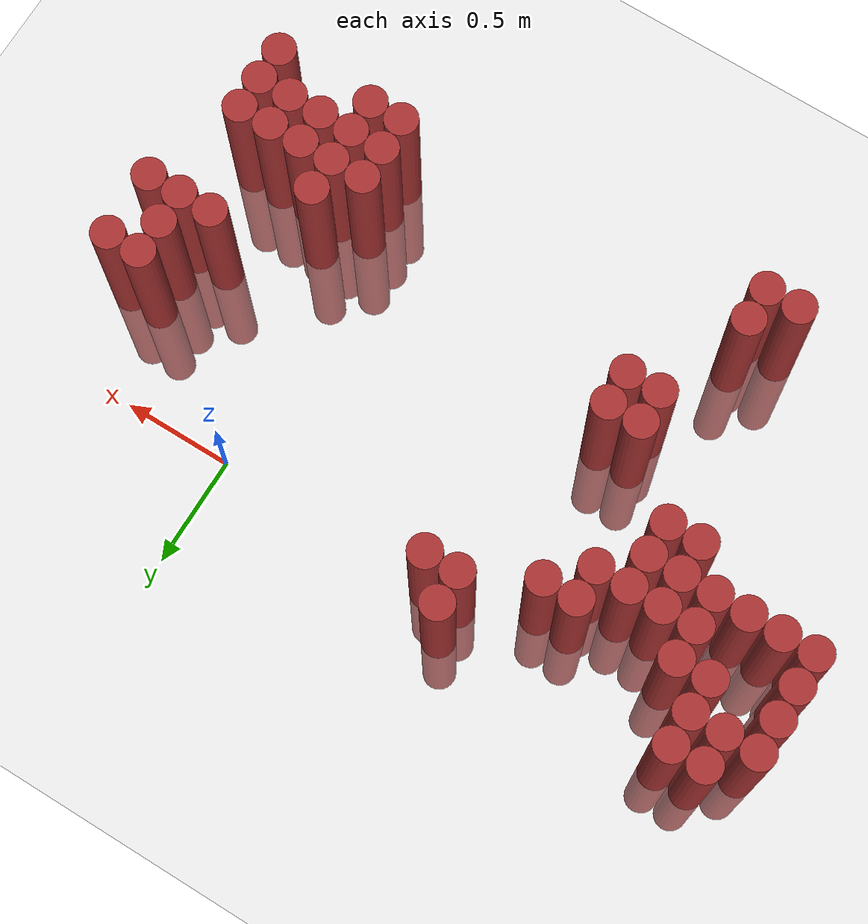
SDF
<sdf version="1.6">
 <world name="default">
  <model name="ground_plane">
   <static>1</static>
   <link name="link">
    <collision name="collision">
     <geometry><plane><normal>0 0 1</normal><size>100 100</size></plane></geometry>
     <surface><friction><ode><mu>100</mu><mu2>50</mu2></ode></friction></surface>
    </collision>
    <visual name="visual">
     <cast_shadows>0</cast_shadows>
     <geometry><plane><normal>0 0 1</normal><size>100 100</size></plane></geometry>
     <material>
      <script><uri>file://media/materials/scripts/gazebo.material</uri><name>Gazebo/Grey</name></script>
     </material>
    </visual>
   </link>
  </model>
  <model name="unit_cylinder_300">
   <static>1</static>
   <pose>-2.525000 -0.425000 0.000000 0.000000 0.000000 0.000000</pose>
   <link name="link">
    <inertial>
     <mass>1</mass>
     <inertia><ixx>0.145833</ixx><ixy>0</ixy><ixz>0</ixz><iyy>0.145833</iyy><iyz>0</iyz><izz>0.125</izz></inertia>
    </inertial>
    <collision name="collision">
     <geometry><cylinder><radius>0.075000</radius><length>1.5</length></cylinder></geometry>
    </collision>
    <visual name="visual">
     <geometry><cylinder><radius>0.075000</radius><length>1.5</length></cylinder></geometry>
     <material>
      <ambient>0.648000 0.192000 0.192000 1</ambient>
      <diffuse>0.648000 0.192000 0.192000 1</diffuse>
     </material>
     <material>
      <script><name>Gazebo/Grey</name><uri>file://media/materials/scripts/gazebo.material</uri></script>
     </material>
    </visual>
   </link>
  </model>
  <model name="unit_cylinder_301">
   <static>1</static>
   <pose>-2.525000 -0.275000 0.000000 0.000000 0.000000 0.000000</pose>
   <link name="link">
    <inertial>
     <mass>1</mass>
     <inertia><ixx>0.145833</ixx><ixy>0</ixy><ixz>0</ixz><iyy>0.145833</iyy><iyz>0</iyz><izz>0.125</izz></inertia>
    </inertial>
    <collision name="collision">
     <geometry><cylinder><radius>0.075000</radius><length>1.5</length></cylinder></geometry>
    </collision>
    <visual name="visual">
     <geometry><cylinder><radius>0.075000</radius><length>1.5</length></cylinder></geometry>
     <material>
      <ambient>0.648000 0.192000 0.192000 1</ambient>
      <diffuse>0.648000 0.192000 0.192000 1</diffuse>
     </material>
     <material>
      <script><name>Gazebo/Grey</name><uri>file://media/materials/scripts/gazebo.material</uri></script>
     </material>
    </visual>
   </link>
  </model>
  <model name="unit_cylinder_302">
   <static>1</static>
   <pose>-2.525000 -0.125000 0.000000 0.000000 0.000000 0.000000</pose>
   <link name="link">
    <inertial>
     <mass>1</mass>
     <inertia><ixx>0.145833</ixx><ixy>0</ixy><ixz>0</ixz><iyy>0.145833</iyy><iyz>0</iyz><izz>0.125</izz></inertia>
    </inertial>
    <collision name="collision">
     <geometry><cylinder><radius>0.075000</radius><length>1.5</length></cylinder></geometry>
    </collision>
    <visual name="visual">
     <geometry><cylinder><radius>0.075000</radius><length>1.5</length></cylinder></geometry>
     <material>
      <ambient>0.648000 0.192000 0.192000 1</ambient>
      <diffuse>0.648000 0.192000 0.192000 1</diffuse>
     </material>
     <material>
      <script><name>Gazebo/Grey</name><uri>file://media/materials/scripts/gazebo.material</uri></script>
     </material>
    </visual>
   </link>
  </model>
  <model name="unit_cylinder_303">
   <static>1</static>
   <pose>-2.525000 0.025000 0.000000 0.000000 0.000000 0.000000</pose>
   <link name="link">
    <inertial>
     <mass>1</mass>
     <inertia><ixx>0.145833</ixx><ixy>0</ixy><ixz>0</ixz><iyy>0.145833</iyy><iyz>0</iyz><izz>0.125</izz></inertia>
    </inertial>
    <collision name="collision">
     <geometry><cylinder><radius>0.075000</radius><length>1.5</length></cylinder></geometry>
    </collision>
    <visual name="visual">
     <geometry><cylinder><radius>0.075000</radius><length>1.5</length></cylinder></geometry>
     <material>
      <ambient>0.648000 0.192000 0.192000 1</ambient>
      <diffuse>0.648000 0.192000 0.192000 1</diffuse>
     </material>
     <material>
      <script><name>Gazebo/Grey</name><uri>file://media/materials/scripts/gazebo.material</uri></script>
     </material>
    </visual>
   </link>
  </model>
  <model name="unit_cylinder_309">
   <static>1</static>
   <pose>-2.375000 -0.425000 0.000000 0.000000 0.000000 0.000000</pose>
   <link name="link">
    <inertial>
     <mass>1</mass>
     <inertia><ixx>0.145833</ixx><ixy>0</ixy><ixz>0</ixz><iyy>0.145833</iyy><iyz>0</iyz><izz>0.125</izz></inertia>
    </inertial>
    <collision name="collision">
     <geometry><cylinder><radius>0.075000</radius><length>1.5</length></cylinder></geometry>
    </collision>
    <visual name="visual">
     <geometry><cylinder><radius>0.075000</radius><length>1.5</length></cylinder></geometry>
     <material>
      <ambient>0.648000 0.192000 0.192000 1</ambient>
      <diffuse>0.648000 0.192000 0.192000 1</diffuse>
     </material>
     <material>
      <script><name>Gazebo/Grey</name><uri>file://media/materials/scripts/gazebo.material</uri></script>
     </material>
    </visual>
   </link>
  </model>
  <model name="unit_cylinder_310">
   <static>1</static>
   <pose>-2.375000 0.025000 0.000000 0.000000 0.000000 0.000000</pose>
   <link name="link">
    <inertial>
     <mass>1</mass>
     <inertia><ixx>0.145833</ixx><ixy>0</ixy><ixz>0</ixz><iyy>0.145833</iyy><iyz>0</iyz><izz>0.125</izz></inertia>
    </inertial>
    <collision name="collision">
     <geometry><cylinder><radius>0.075000</radius><length>1.5</length></cylinder></geometry>
    </collision>
    <visual name="visual">
     <geometry><cylinder><radius>0.075000</radius><length>1.5</length></cylinder></geometry>
     <material>
      <ambient>0.648000 0.192000 0.192000 1</ambient>
      <diffuse>0.648000 0.192000 0.192000 1</diffuse>
     </material>
     <material>
      <script><name>Gazebo/Grey</name><uri>file://media/materials/scripts/gazebo.material</uri></script>
     </material>
    </visual>
   </link>
  </model>
  <model name="unit_cylinder_311">
   <static>1</static>
   <pose>-2.375000 0.175000 0.000000 0.000000 0.000000 0.000000</pose>
   <link name="link">
    <inertial>
     <mass>1</mass>
     <inertia><ixx>0.145833</ixx><ixy>0</ixy><ixz>0</ixz><iyy>0.145833</iyy><iyz>0</iyz><izz>0.125</izz></inertia>
    </inertial>
    <collision name="collision">
     <geometry><cylinder><radius>0.075000</radius><length>1.5</length></cylinder></geometry>
    </collision>
    <visual name="visual">
     <geometry><cylinder><radius>0.075000</radius><length>1.5</length></cylinder></geometry>
     <material>
      <ambient>0.648000 0.192000 0.192000 1</ambient>
      <diffuse>0.648000 0.192000 0.192000 1</diffuse>
     </material>
     <material>
      <script><name>Gazebo/Grey</name><uri>file://media/materials/scripts/gazebo.material</uri></script>
     </material>
    </visual>
   </link>
  </model>
  <model name="unit_cylinder_320">
   <static>1</static>
   <pose>-2.225000 -0.425000 0.000000 0.000000 0.000000 0.000000</pose>
   <link name="link">
    <inertial>
     <mass>1</mass>
     <inertia><ixx>0.145833</ixx><ixy>0</ixy><ixz>0</ixz><iyy>0.145833</iyy><iyz>0</iyz><izz>0.125</izz></inertia>
    </inertial>
    <collision name="collision">
     <geometry><cylinder><radius>0.075000</radius><length>1.5</length></cylinder></geometry>
    </collision>
    <visual name="visual">
     <geometry><cylinder><radius>0.075000</radius><length>1.5</length></cylinder></geometry>
     <material>
      <ambient>0.648000 0.192000 0.192000 1</ambient>
      <diffuse>0.648000 0.192000 0.192000 1</diffuse>
     </material>
     <material>
      <script><name>Gazebo/Grey</name><uri>file://media/materials/scripts/gazebo.material</uri></script>
     </material>
    </visual>
   </link>
  </model>
  <model name="unit_cylinder_321">
   <static>1</static>
   <pose>-2.225000 -0.125000 0.000000 0.000000 0.000000 0.000000</pose>
   <link name="link">
    <inertial>
     <mass>1</mass>
     <inertia><ixx>0.145833</ixx><ixy>0</ixy><ixz>0</ixz><iyy>0.145833</iyy><iyz>0</iyz><izz>0.125</izz></inertia>
    </inertial>
    <collision name="collision">
     <geometry><cylinder><radius>0.075000</radius><length>1.5</length></cylinder></geometry>
    </collision>
    <visual name="visual">
     <geometry><cylinder><radius>0.075000</radius><length>1.5</length></cylinder></geometry>
     <material>
      <ambient>0.648000 0.192000 0.192000 1</ambient>
      <diffuse>0.648000 0.192000 0.192000 1</diffuse>
     </material>
     <material>
      <script><name>Gazebo/Grey</name><uri>file://media/materials/scripts/gazebo.material</uri></script>
     </material>
    </visual>
   </link>
  </model>
  <model name="unit_cylinder_322">
   <static>1</static>
   <pose>-2.225000 0.025000 0.000000 0.000000 0.000000 0.000000</pose>
   <link name="link">
    <inertial>
     <mass>1</mass>
     <inertia><ixx>0.145833</ixx><ixy>0</ixy><ixz>0</ixz><iyy>0.145833</iyy><iyz>0</iyz><izz>0.125</izz></inertia>
    </inertial>
    <collision name="collision">
     <geometry><cylinder><radius>0.075000</radius><length>1.5</length></cylinder></geometry>
    </collision>
    <visual name="visual">
     <geometry><cylinder><radius>0.075000</radius><length>1.5</length></cylinder></geometry>
     <material>
      <ambient>0.648000 0.192000 0.192000 1</ambient>
      <diffuse>0.648000 0.192000 0.192000 1</diffuse>
     </material>
     <material>
      <script><name>Gazebo/Grey</name><uri>file://media/materials/scripts/gazebo.material</uri></script>
     </material>
    </visual>
   </link>
  </model>
  <model name="unit_cylinder_323">
   <static>1</static>
   <pose>-2.225000 0.175000 0.000000 0.000000 0.000000 0.000000</pose>
   <link name="link">
    <inertial>
     <mass>1</mass>
     <inertia><ixx>0.145833</ixx><ixy>0</ixy><ixz>0</ixz><iyy>0.145833</iyy><iyz>0</iyz><izz>0.125</izz></inertia>
    </inertial>
    <collision name="collision">
     <geometry><cylinder><radius>0.075000</radius><length>1.5</length></cylinder></geometry>
    </collision>
    <visual name="visual">
     <geometry><cylinder><radius>0.075000</radius><length>1.5</length></cylinder></geometry>
     <material>
      <ambient>0.648000 0.192000 0.192000 1</ambient>
      <diffuse>0.648000 0.192000 0.192000 1</diffuse>
     </material>
     <material>
      <script><name>Gazebo/Grey</name><uri>file://media/materials/scripts/gazebo.material</uri></script>
     </material>
    </visual>
   </link>
  </model>
  <model name="unit_cylinder_333">
   <static>1</static>
   <pose>-2.075000 -0.425000 0.000000 0.000000 0.000000 0.000000</pose>
   <link name="link">
    <inertial>
     <mass>1</mass>
     <inertia><ixx>0.145833</ixx><ixy>0</ixy><ixz>0</ixz><iyy>0.145833</iyy><iyz>0</iyz><izz>0.125</izz></inertia>
    </inertial>
    <collision name="collision">
     <geometry><cylinder><radius>0.075000</radius><length>1.5</length></cylinder></geometry>
    </collision>
    <visual name="visual">
     <geometry><cylinder><radius>0.075000</radius><length>1.5</length></cylinder></geometry>
     <material>
      <ambient>0.648000 0.192000 0.192000 1</ambient>
      <diffuse>0.648000 0.192000 0.192000 1</diffuse>
     </material>
     <material>
      <script><name>Gazebo/Grey</name><uri>file://media/materials/scripts/gazebo.material</uri></script>
     </material>
    </visual>
   </link>
  </model>
  <model name="unit_cylinder_334">
   <static>1</static>
   <pose>-2.075000 -0.275000 0.000000 0.000000 0.000000 0.000000</pose>
   <link name="link">
    <inertial>
     <mass>1</mass>
     <inertia><ixx>0.145833</ixx><ixy>0</ixy><ixz>0</ixz><iyy>0.145833</iyy><iyz>0</iyz><izz>0.125</izz></inertia>
    </inertial>
    <collision name="collision">
     <geometry><cylinder><radius>0.075000</radius><length>1.5</length></cylinder></geometry>
    </collision>
    <visual name="visual">
     <geometry><cylinder><radius>0.075000</radius><length>1.5</length></cylinder></geometry>
     <material>
      <ambient>0.648000 0.192000 0.192000 1</ambient>
      <diffuse>0.648000 0.192000 0.192000 1</diffuse>
     </material>
     <material>
      <script><name>Gazebo/Grey</name><uri>file://media/materials/scripts/gazebo.material</uri></script>
     </material>
    </visual>
   </link>
  </model>
  <model name="unit_cylinder_335">
   <static>1</static>
   <pose>-2.075000 -0.125000 0.000000 0.000000 0.000000 0.000000</pose>
   <link name="link">
    <inertial>
     <mass>1</mass>
     <inertia><ixx>0.145833</ixx><ixy>0</ixy><ixz>0</ixz><iyy>0.145833</iyy><iyz>0</iyz><izz>0.125</izz></inertia>
    </inertial>
    <collision name="collision">
     <geometry><cylinder><radius>0.075000</radius><length>1.5</length></cylinder></geometry>
    </collision>
    <visual name="visual">
     <geometry><cylinder><radius>0.075000</radius><length>1.5</length></cylinder></geometry>
     <material>
      <ambient>0.648000 0.192000 0.192000 1</ambient>
      <diffuse>0.648000 0.192000 0.192000 1</diffuse>
     </material>
     <material>
      <script><name>Gazebo/Grey</name><uri>file://media/materials/scripts/gazebo.material</uri></script>
     </material>
    </visual>
   </link>
  </model>
  <model name="unit_cylinder_345">
   <static>1</static>
   <pose>-1.925000 -0.575000 0.000000 0.000000 0.000000 0.000000</pose>
   <link name="link">
    <inertial>
     <mass>1</mass>
     <inertia><ixx>0.145833</ixx><ixy>0</ixy><ixz>0</ixz><iyy>0.145833</iyy><iyz>0</iyz><izz>0.125</izz></inertia>
    </inertial>
    <collision name="collision">
     <geometry><cylinder><radius>0.075000</radius><length>1.5</length></cylinder></geometry>
    </collision>
    <visual name="visual">
     <geometry><cylinder><radius>0.075000</radius><length>1.5</length></cylinder></geometry>
     <material>
      <ambient>0.648000 0.192000 0.192000 1</ambient>
      <diffuse>0.648000 0.192000 0.192000 1</diffuse>
     </material>
     <material>
      <script><name>Gazebo/Grey</name><uri>file://media/materials/scripts/gazebo.material</uri></script>
     </material>
    </visual>
   </link>
  </model>
  <model name="unit_cylinder_346">
   <static>1</static>
   <pose>-1.925000 -0.425000 0.000000 0.000000 0.000000 0.000000</pose>
   <link name="link">
    <inertial>
     <mass>1</mass>
     <inertia><ixx>0.145833</ixx><ixy>0</ixy><ixz>0</ixz><iyy>0.145833</iyy><iyz>0</iyz><izz>0.125</izz></inertia>
    </inertial>
    <collision name="collision">
     <geometry><cylinder><radius>0.075000</radius><length>1.5</length></cylinder></geometry>
    </collision>
    <visual name="visual">
     <geometry><cylinder><radius>0.075000</radius><length>1.5</length></cylinder></geometry>
     <material>
      <ambient>0.648000 0.192000 0.192000 1</ambient>
      <diffuse>0.648000 0.192000 0.192000 1</diffuse>
     </material>
     <material>
      <script><name>Gazebo/Grey</name><uri>file://media/materials/scripts/gazebo.material</uri></script>
     </material>
    </visual>
   </link>
  </model>
  <model name="unit_cylinder_347">
   <static>1</static>
   <pose>-1.925000 -0.275000 0.000000 0.000000 0.000000 0.000000</pose>
   <link name="link">
    <inertial>
     <mass>1</mass>
     <inertia><ixx>0.145833</ixx><ixy>0</ixy><ixz>0</ixz><iyy>0.145833</iyy><iyz>0</iyz><izz>0.125</izz></inertia>
    </inertial>
    <collision name="collision">
     <geometry><cylinder><radius>0.075000</radius><length>1.5</length></cylinder></geometry>
    </collision>
    <visual name="visual">
     <geometry><cylinder><radius>0.075000</radius><length>1.5</length></cylinder></geometry>
     <material>
      <ambient>0.648000 0.192000 0.192000 1</ambient>
      <diffuse>0.648000 0.192000 0.192000 1</diffuse>
     </material>
     <material>
      <script><name>Gazebo/Grey</name><uri>file://media/materials/scripts/gazebo.material</uri></script>
     </material>
    </visual>
   </link>
  </model>
  <model name="unit_cylinder_357">
   <static>1</static>
   <pose>-1.775000 -1.625000 0.000000 0.000000 0.000000 0.000000</pose>
   <link name="link">
    <inertial>
     <mass>1</mass>
     <inertia><ixx>0.145833</ixx><ixy>0</ixy><ixz>0</ixz><iyy>0.145833</iyy><iyz>0</iyz><izz>0.125</izz></inertia>
    </inertial>
    <collision name="collision">
     <geometry><cylinder><radius>0.075000</radius><length>1.5</length></cylinder></geometry>
    </collision>
    <visual name="visual">
     <geometry><cylinder><radius>0.075000</radius><length>1.5</length></cylinder></geometry>
     <material>
      <ambient>0.648000 0.192000 0.192000 1</ambient>
      <diffuse>0.648000 0.192000 0.192000 1</diffuse>
     </material>
     <material>
      <script><name>Gazebo/Grey</name><uri>file://media/materials/scripts/gazebo.material</uri></script>
     </material>
    </visual>
   </link>
  </model>
  <model name="unit_cylinder_358">
   <static>1</static>
   <pose>-1.775000 -0.575000 0.000000 0.000000 0.000000 0.000000</pose>
   <link name="link">
    <inertial>
     <mass>1</mass>
     <inertia><ixx>0.145833</ixx><ixy>0</ixy><ixz>0</ixz><iyy>0.145833</iyy><iyz>0</iyz><izz>0.125</izz></inertia>
    </inertial>
    <collision name="collision">
     <geometry><cylinder><radius>0.075000</radius><length>1.5</length></cylinder></geometry>
    </collision>
    <visual name="visual">
     <geometry><cylinder><radius>0.075000</radius><length>1.5</length></cylinder></geometry>
     <material>
      <ambient>0.648000 0.192000 0.192000 1</ambient>
      <diffuse>0.648000 0.192000 0.192000 1</diffuse>
     </material>
     <material>
      <script><name>Gazebo/Grey</name><uri>file://media/materials/scripts/gazebo.material</uri></script>
     </material>
    </visual>
   </link>
  </model>
  <model name="unit_cylinder_359">
   <static>1</static>
   <pose>-1.775000 -0.425000 0.000000 0.000000 0.000000 0.000000</pose>
   <link name="link">
    <inertial>
     <mass>1</mass>
     <inertia><ixx>0.145833</ixx><ixy>0</ixy><ixz>0</ixz><iyy>0.145833</iyy><iyz>0</iyz><izz>0.125</izz></inertia>
    </inertial>
    <collision name="collision">
     <geometry><cylinder><radius>0.075000</radius><length>1.5</length></cylinder></geometry>
    </collision>
    <visual name="visual">
     <geometry><cylinder><radius>0.075000</radius><length>1.5</length></cylinder></geometry>
     <material>
      <ambient>0.648000 0.192000 0.192000 1</ambient>
      <diffuse>0.648000 0.192000 0.192000 1</diffuse>
     </material>
     <material>
      <script><name>Gazebo/Grey</name><uri>file://media/materials/scripts/gazebo.material</uri></script>
     </material>
    </visual>
   </link>
  </model>
  <model name="unit_cylinder_360">
   <static>1</static>
   <pose>-1.775000 -0.275000 0.000000 0.000000 0.000000 0.000000</pose>
   <link name="link">
    <inertial>
     <mass>1</mass>
     <inertia><ixx>0.145833</ixx><ixy>0</ixy><ixz>0</ixz><iyy>0.145833</iyy><iyz>0</iyz><izz>0.125</izz></inertia>
    </inertial>
    <collision name="collision">
     <geometry><cylinder><radius>0.075000</radius><length>1.5</length></cylinder></geometry>
    </collision>
    <visual name="visual">
     <geometry><cylinder><radius>0.075000</radius><length>1.5</length></cylinder></geometry>
     <material>
      <ambient>0.648000 0.192000 0.192000 1</ambient>
      <diffuse>0.648000 0.192000 0.192000 1</diffuse>
     </material>
     <material>
      <script><name>Gazebo/Grey</name><uri>file://media/materials/scripts/gazebo.material</uri></script>
     </material>
    </visual>
   </link>
  </model>
  <model name="unit_cylinder_362">
   <static>1</static>
   <pose>-1.625000 -1.625000 0.000000 0.000000 0.000000 0.000000</pose>
   <link name="link">
    <inertial>
     <mass>1</mass>
     <inertia><ixx>0.145833</ixx><ixy>0</ixy><ixz>0</ixz><iyy>0.145833</iyy><iyz>0</iyz><izz>0.125</izz></inertia>
    </inertial>
    <collision name="collision">
     <geometry><cylinder><radius>0.075000</radius><length>1.5</length></cylinder></geometry>
    </collision>
    <visual name="visual">
     <geometry><cylinder><radius>0.075000</radius><length>1.5</length></cylinder></geometry>
     <material>
      <ambient>0.648000 0.192000 0.192000 1</ambient>
      <diffuse>0.648000 0.192000 0.192000 1</diffuse>
     </material>
     <material>
      <script><name>Gazebo/Grey</name><uri>file://media/materials/scripts/gazebo.material</uri></script>
     </material>
    </visual>
   </link>
  </model>
  <model name="unit_cylinder_363">
   <static>1</static>
   <pose>-1.625000 -1.475000 0.000000 0.000000 0.000000 0.000000</pose>
   <link name="link">
    <inertial>
     <mass>1</mass>
     <inertia><ixx>0.145833</ixx><ixy>0</ixy><ixz>0</ixz><iyy>0.145833</iyy><iyz>0</iyz><izz>0.125</izz></inertia>
    </inertial>
    <collision name="collision">
     <geometry><cylinder><radius>0.075000</radius><length>1.5</length></cylinder></geometry>
    </collision>
    <visual name="visual">
     <geometry><cylinder><radius>0.075000</radius><length>1.5</length></cylinder></geometry>
     <material>
      <ambient>0.648000 0.192000 0.192000 1</ambient>
      <diffuse>0.648000 0.192000 0.192000 1</diffuse>
     </material>
     <material>
      <script><name>Gazebo/Grey</name><uri>file://media/materials/scripts/gazebo.material</uri></script>
     </material>
    </visual>
   </link>
  </model>
  <model name="unit_cylinder_364">
   <static>1</static>
   <pose>-1.625000 -0.275000 0.000000 0.000000 0.000000 0.000000</pose>
   <link name="link">
    <inertial>
     <mass>1</mass>
     <inertia><ixx>0.145833</ixx><ixy>0</ixy><ixz>0</ixz><iyy>0.145833</iyy><iyz>0</iyz><izz>0.125</izz></inertia>
    </inertial>
    <collision name="collision">
     <geometry><cylinder><radius>0.075000</radius><length>1.5</length></cylinder></geometry>
    </collision>
    <visual name="visual">
     <geometry><cylinder><radius>0.075000</radius><length>1.5</length></cylinder></geometry>
     <material>
      <ambient>0.648000 0.192000 0.192000 1</ambient>
      <diffuse>0.648000 0.192000 0.192000 1</diffuse>
     </material>
     <material>
      <script><name>Gazebo/Grey</name><uri>file://media/materials/scripts/gazebo.material</uri></script>
     </material>
    </visual>
   </link>
  </model>
  <model name="unit_cylinder_365">
   <static>1</static>
   <pose>-1.625000 -0.125000 0.000000 0.000000 0.000000 0.000000</pose>
   <link name="link">
    <inertial>
     <mass>1</mass>
     <inertia><ixx>0.145833</ixx><ixy>0</ixy><ixz>0</ixz><iyy>0.145833</iyy><iyz>0</iyz><izz>0.125</izz></inertia>
    </inertial>
    <collision name="collision">
     <geometry><cylinder><radius>0.075000</radius><length>1.5</length></cylinder></geometry>
    </collision>
    <visual name="visual">
     <geometry><cylinder><radius>0.075000</radius><length>1.5</length></cylinder></geometry>
     <material>
      <ambient>0.648000 0.192000 0.192000 1</ambient>
      <diffuse>0.648000 0.192000 0.192000 1</diffuse>
     </material>
     <material>
      <script><name>Gazebo/Grey</name><uri>file://media/materials/scripts/gazebo.material</uri></script>
     </material>
    </visual>
   </link>
  </model>
  <model name="unit_cylinder_366">
   <static>1</static>
   <pose>-1.475000 -1.025000 0.000000 0.000000 0.000000 0.000000</pose>
   <link name="link">
    <inertial>
     <mass>1</mass>
     <inertia><ixx>0.145833</ixx><ixy>0</ixy><ixz>0</ixz><iyy>0.145833</iyy><iyz>0</iyz><izz>0.125</izz></inertia>
    </inertial>
    <collision name="collision">
     <geometry><cylinder><radius>0.075000</radius><length>1.5</length></cylinder></geometry>
    </collision>
    <visual name="visual">
     <geometry><cylinder><radius>0.075000</radius><length>1.5</length></cylinder></geometry>
     <material>
      <ambient>0.648000 0.192000 0.192000 1</ambient>
      <diffuse>0.648000 0.192000 0.192000 1</diffuse>
     </material>
     <material>
      <script><name>Gazebo/Grey</name><uri>file://media/materials/scripts/gazebo.material</uri></script>
     </material>
    </visual>
   </link>
  </model>
  <model name="unit_cylinder_367">
   <static>1</static>
   <pose>-1.475000 -0.875000 0.000000 0.000000 0.000000 0.000000</pose>
   <link name="link">
    <inertial>
     <mass>1</mass>
     <inertia><ixx>0.145833</ixx><ixy>0</ixy><ixz>0</ixz><iyy>0.145833</iyy><iyz>0</iyz><izz>0.125</izz></inertia>
    </inertial>
    <collision name="collision">
     <geometry><cylinder><radius>0.075000</radius><length>1.5</length></cylinder></geometry>
    </collision>
    <visual name="visual">
     <geometry><cylinder><radius>0.075000</radius><length>1.5</length></cylinder></geometry>
     <material>
      <ambient>0.648000 0.192000 0.192000 1</ambient>
      <diffuse>0.648000 0.192000 0.192000 1</diffuse>
     </material>
     <material>
      <script><name>Gazebo/Grey</name><uri>file://media/materials/scripts/gazebo.material</uri></script>
     </material>
    </visual>
   </link>
  </model>
  <model name="unit_cylinder_368">
   <static>1</static>
   <pose>-1.475000 -0.125000 0.000000 0.000000 0.000000 0.000000</pose>
   <link name="link">
    <inertial>
     <mass>1</mass>
     <inertia><ixx>0.145833</ixx><ixy>0</ixy><ixz>0</ixz><iyy>0.145833</iyy><iyz>0</iyz><izz>0.125</izz></inertia>
    </inertial>
    <collision name="collision">
     <geometry><cylinder><radius>0.075000</radius><length>1.5</length></cylinder></geometry>
    </collision>
    <visual name="visual">
     <geometry><cylinder><radius>0.075000</radius><length>1.5</length></cylinder></geometry>
     <material>
      <ambient>0.648000 0.192000 0.192000 1</ambient>
      <diffuse>0.648000 0.192000 0.192000 1</diffuse>
     </material>
     <material>
      <script><name>Gazebo/Grey</name><uri>file://media/materials/scripts/gazebo.material</uri></script>
     </material>
    </visual>
   </link>
  </model>
  <model name="unit_cylinder_372">
   <static>1</static>
   <pose>-1.325000 -1.025000 0.000000 0.000000 0.000000 0.000000</pose>
   <link name="link">
    <inertial>
     <mass>1</mass>
     <inertia><ixx>0.145833</ixx><ixy>0</ixy><ixz>0</ixz><iyy>0.145833</iyy><iyz>0</iyz><izz>0.125</izz></inertia>
    </inertial>
    <collision name="collision">
     <geometry><cylinder><radius>0.075000</radius><length>1.5</length></cylinder></geometry>
    </collision>
    <visual name="visual">
     <geometry><cylinder><radius>0.075000</radius><length>1.5</length></cylinder></geometry>
     <material>
      <ambient>0.648000 0.192000 0.192000 1</ambient>
      <diffuse>0.648000 0.192000 0.192000 1</diffuse>
     </material>
     <material>
      <script><name>Gazebo/Grey</name><uri>file://media/materials/scripts/gazebo.material</uri></script>
     </material>
    </visual>
   </link>
  </model>
  <model name="unit_cylinder_373">
   <static>1</static>
   <pose>-1.325000 -0.875000 0.000000 0.000000 0.000000 0.000000</pose>
   <link name="link">
    <inertial>
     <mass>1</mass>
     <inertia><ixx>0.145833</ixx><ixy>0</ixy><ixz>0</ixz><iyy>0.145833</iyy><iyz>0</iyz><izz>0.125</izz></inertia>
    </inertial>
    <collision name="collision">
     <geometry><cylinder><radius>0.075000</radius><length>1.5</length></cylinder></geometry>
    </collision>
    <visual name="visual">
     <geometry><cylinder><radius>0.075000</radius><length>1.5</length></cylinder></geometry>
     <material>
      <ambient>0.648000 0.192000 0.192000 1</ambient>
      <diffuse>0.648000 0.192000 0.192000 1</diffuse>
     </material>
     <material>
      <script><name>Gazebo/Grey</name><uri>file://media/materials/scripts/gazebo.material</uri></script>
     </material>
    </visual>
   </link>
  </model>
  <model name="unit_cylinder_381">
   <static>1</static>
   <pose>-1.175000 0.025000 0.000000 0.000000 0.000000 0.000000</pose>
   <link name="link">
    <inertial>
     <mass>1</mass>
     <inertia><ixx>0.145833</ixx><ixy>0</ixy><ixz>0</ixz><iyy>0.145833</iyy><iyz>0</iyz><izz>0.125</izz></inertia>
    </inertial>
    <collision name="collision">
     <geometry><cylinder><radius>0.075000</radius><length>1.5</length></cylinder></geometry>
    </collision>
    <visual name="visual">
     <geometry><cylinder><radius>0.075000</radius><length>1.5</length></cylinder></geometry>
     <material>
      <ambient>0.648000 0.192000 0.192000 1</ambient>
      <diffuse>0.648000 0.192000 0.192000 1</diffuse>
     </material>
     <material>
      <script><name>Gazebo/Grey</name><uri>file://media/materials/scripts/gazebo.material</uri></script>
     </material>
    </visual>
   </link>
  </model>
  <model name="unit_cylinder_382">
   <static>1</static>
   <pose>-1.175000 0.175000 0.000000 0.000000 0.000000 0.000000</pose>
   <link name="link">
    <inertial>
     <mass>1</mass>
     <inertia><ixx>0.145833</ixx><ixy>0</ixy><ixz>0</ixz><iyy>0.145833</iyy><iyz>0</iyz><izz>0.125</izz></inertia>
    </inertial>
    <collision name="collision">
     <geometry><cylinder><radius>0.075000</radius><length>1.5</length></cylinder></geometry>
    </collision>
    <visual name="visual">
     <geometry><cylinder><radius>0.075000</radius><length>1.5</length></cylinder></geometry>
     <material>
      <ambient>0.648000 0.192000 0.192000 1</ambient>
      <diffuse>0.648000 0.192000 0.192000 1</diffuse>
     </material>
     <material>
      <script><name>Gazebo/Grey</name><uri>file://media/materials/scripts/gazebo.material</uri></script>
     </material>
    </visual>
   </link>
  </model>
  <model name="unit_cylinder_389">
   <static>1</static>
   <pose>-1.025000 0.025000 0.000000 0.000000 0.000000 0.000000</pose>
   <link name="link">
    <inertial>
     <mass>1</mass>
     <inertia><ixx>0.145833</ixx><ixy>0</ixy><ixz>0</ixz><iyy>0.145833</iyy><iyz>0</iyz><izz>0.125</izz></inertia>
    </inertial>
    <collision name="collision">
     <geometry><cylinder><radius>0.075000</radius><length>1.5</length></cylinder></geometry>
    </collision>
    <visual name="visual">
     <geometry><cylinder><radius>0.075000</radius><length>1.5</length></cylinder></geometry>
     <material>
      <ambient>0.648000 0.192000 0.192000 1</ambient>
      <diffuse>0.648000 0.192000 0.192000 1</diffuse>
     </material>
     <material>
      <script><name>Gazebo/Grey</name><uri>file://media/materials/scripts/gazebo.material</uri></script>
     </material>
    </visual>
   </link>
  </model>
  <model name="unit_cylinder_407">
   <static>1</static>
   <pose>0.025000 -1.475000 0.000000 0.000000 0.000000 0.000000</pose>
   <link name="link">
    <inertial>
     <mass>1</mass>
     <inertia><ixx>0.145833</ixx><ixy>0</ixy><ixz>0</ixz><iyy>0.145833</iyy><iyz>0</iyz><izz>0.125</izz></inertia>
    </inertial>
    <collision name="collision">
     <geometry><cylinder><radius>0.075000</radius><length>1.5</length></cylinder></geometry>
    </collision>
    <visual name="visual">
     <geometry><cylinder><radius>0.075000</radius><length>1.5</length></cylinder></geometry>
     <material>
      <ambient>0.648000 0.192000 0.192000 1</ambient>
      <diffuse>0.648000 0.192000 0.192000 1</diffuse>
     </material>
     <material>
      <script><name>Gazebo/Grey</name><uri>file://media/materials/scripts/gazebo.material</uri></script>
     </material>
    </visual>
   </link>
  </model>
  <model name="unit_cylinder_408">
   <static>1</static>
   <pose>0.025000 -1.325000 0.000000 0.000000 0.000000 0.000000</pose>
   <link name="link">
    <inertial>
     <mass>1</mass>
     <inertia><ixx>0.145833</ixx><ixy>0</ixy><ixz>0</ixz><iyy>0.145833</iyy><iyz>0</iyz><izz>0.125</izz></inertia>
    </inertial>
    <collision name="collision">
     <geometry><cylinder><radius>0.075000</radius><length>1.5</length></cylinder></geometry>
    </collision>
    <visual name="visual">
     <geometry><cylinder><radius>0.075000</radius><length>1.5</length></cylinder></geometry>
     <material>
      <ambient>0.648000 0.192000 0.192000 1</ambient>
      <diffuse>0.648000 0.192000 0.192000 1</diffuse>
     </material>
     <material>
      <script><name>Gazebo/Grey</name><uri>file://media/materials/scripts/gazebo.material</uri></script>
     </material>
    </visual>
   </link>
  </model>
  <model name="unit_cylinder_409">
   <static>1</static>
   <pose>0.025000 -1.175000 0.000000 0.000000 0.000000 0.000000</pose>
   <link name="link">
    <inertial>
     <mass>1</mass>
     <inertia><ixx>0.145833</ixx><ixy>0</ixy><ixz>0</ixz><iyy>0.145833</iyy><iyz>0</iyz><izz>0.125</izz></inertia>
    </inertial>
    <collision name="collision">
     <geometry><cylinder><radius>0.075000</radius><length>1.5</length></cylinder></geometry>
    </collision>
    <visual name="visual">
     <geometry><cylinder><radius>0.075000</radius><length>1.5</length></cylinder></geometry>
     <material>
      <ambient>0.648000 0.192000 0.192000 1</ambient>
      <diffuse>0.648000 0.192000 0.192000 1</diffuse>
     </material>
     <material>
      <script><name>Gazebo/Grey</name><uri>file://media/materials/scripts/gazebo.material</uri></script>
     </material>
    </visual>
   </link>
  </model>
  <model name="unit_cylinder_412">
   <static>1</static>
   <pose>0.175000 -1.475000 0.000000 0.000000 0.000000 0.000000</pose>
   <link name="link">
    <inertial>
     <mass>1</mass>
     <inertia><ixx>0.145833</ixx><ixy>0</ixy><ixz>0</ixz><iyy>0.145833</iyy><iyz>0</iyz><izz>0.125</izz></inertia>
    </inertial>
    <collision name="collision">
     <geometry><cylinder><radius>0.075000</radius><length>1.5</length></cylinder></geometry>
    </collision>
    <visual name="visual">
     <geometry><cylinder><radius>0.075000</radius><length>1.5</length></cylinder></geometry>
     <material>
      <ambient>0.648000 0.192000 0.192000 1</ambient>
      <diffuse>0.648000 0.192000 0.192000 1</diffuse>
     </material>
     <material>
      <script><name>Gazebo/Grey</name><uri>file://media/materials/scripts/gazebo.material</uri></script>
     </material>
    </visual>
   </link>
  </model>
  <model name="unit_cylinder_413">
   <static>1</static>
   <pose>0.175000 -1.325000 0.000000 0.000000 0.000000 0.000000</pose>
   <link name="link">
    <inertial>
     <mass>1</mass>
     <inertia><ixx>0.145833</ixx><ixy>0</ixy><ixz>0</ixz><iyy>0.145833</iyy><iyz>0</iyz><izz>0.125</izz></inertia>
    </inertial>
    <collision name="collision">
     <geometry><cylinder><radius>0.075000</radius><length>1.5</length></cylinder></geometry>
    </collision>
    <visual name="visual">
     <geometry><cylinder><radius>0.075000</radius><length>1.5</length></cylinder></geometry>
     <material>
      <ambient>0.648000 0.192000 0.192000 1</ambient>
      <diffuse>0.648000 0.192000 0.192000 1</diffuse>
     </material>
     <material>
      <script><name>Gazebo/Grey</name><uri>file://media/materials/scripts/gazebo.material</uri></script>
     </material>
    </visual>
   </link>
  </model>
  <model name="unit_cylinder_414">
   <static>1</static>
   <pose>0.175000 -1.175000 0.000000 0.000000 0.000000 0.000000</pose>
   <link name="link">
    <inertial>
     <mass>1</mass>
     <inertia><ixx>0.145833</ixx><ixy>0</ixy><ixz>0</ixz><iyy>0.145833</iyy><iyz>0</iyz><izz>0.125</izz></inertia>
    </inertial>
    <collision name="collision">
     <geometry><cylinder><radius>0.075000</radius><length>1.5</length></cylinder></geometry>
    </collision>
    <visual name="visual">
     <geometry><cylinder><radius>0.075000</radius><length>1.5</length></cylinder></geometry>
     <material>
      <ambient>0.648000 0.192000 0.192000 1</ambient>
      <diffuse>0.648000 0.192000 0.192000 1</diffuse>
     </material>
     <material>
      <script><name>Gazebo/Grey</name><uri>file://media/materials/scripts/gazebo.material</uri></script>
     </material>
    </visual>
   </link>
  </model>
  <model name="unit_cylinder_415">
   <static>1</static>
   <pose>0.175000 -1.025000 0.000000 0.000000 0.000000 0.000000</pose>
   <link name="link">
    <inertial>
     <mass>1</mass>
     <inertia><ixx>0.145833</ixx><ixy>0</ixy><ixz>0</ixz><iyy>0.145833</iyy><iyz>0</iyz><izz>0.125</izz></inertia>
    </inertial>
    <collision name="collision">
     <geometry><cylinder><radius>0.075000</radius><length>1.5</length></cylinder></geometry>
    </collision>
    <visual name="visual">
     <geometry><cylinder><radius>0.075000</radius><length>1.5</length></cylinder></geometry>
     <material>
      <ambient>0.648000 0.192000 0.192000 1</ambient>
      <diffuse>0.648000 0.192000 0.192000 1</diffuse>
     </material>
     <material>
      <script><name>Gazebo/Grey</name><uri>file://media/materials/scripts/gazebo.material</uri></script>
     </material>
    </visual>
   </link>
  </model>
  <model name="unit_cylinder_417">
   <static>1</static>
   <pose>0.325000 -1.325000 0.000000 0.000000 0.000000 0.000000</pose>
   <link name="link">
    <inertial>
     <mass>1</mass>
     <inertia><ixx>0.145833</ixx><ixy>0</ixy><ixz>0</ixz><iyy>0.145833</iyy><iyz>0</iyz><izz>0.125</izz></inertia>
    </inertial>
    <collision name="collision">
     <geometry><cylinder><radius>0.075000</radius><length>1.5</length></cylinder></geometry>
    </collision>
    <visual name="visual">
     <geometry><cylinder><radius>0.075000</radius><length>1.5</length></cylinder></geometry>
     <material>
      <ambient>0.648000 0.192000 0.192000 1</ambient>
      <diffuse>0.648000 0.192000 0.192000 1</diffuse>
     </material>
     <material>
      <script><name>Gazebo/Grey</name><uri>file://media/materials/scripts/gazebo.material</uri></script>
     </material>
    </visual>
   </link>
  </model>
  <model name="unit_cylinder_418">
   <static>1</static>
   <pose>0.325000 -1.175000 0.000000 0.000000 0.000000 0.000000</pose>
   <link name="link">
    <inertial>
     <mass>1</mass>
     <inertia><ixx>0.145833</ixx><ixy>0</ixy><ixz>0</ixz><iyy>0.145833</iyy><iyz>0</iyz><izz>0.125</izz></inertia>
    </inertial>
    <collision name="collision">
     <geometry><cylinder><radius>0.075000</radius><length>1.5</length></cylinder></geometry>
    </collision>
    <visual name="visual">
     <geometry><cylinder><radius>0.075000</radius><length>1.5</length></cylinder></geometry>
     <material>
      <ambient>0.648000 0.192000 0.192000 1</ambient>
      <diffuse>0.648000 0.192000 0.192000 1</diffuse>
     </material>
     <material>
      <script><name>Gazebo/Grey</name><uri>file://media/materials/scripts/gazebo.material</uri></script>
     </material>
    </visual>
   </link>
  </model>
  <model name="unit_cylinder_423">
   <static>1</static>
   <pose>0.475000 -1.325000 0.000000 0.000000 0.000000 0.000000</pose>
   <link name="link">
    <inertial>
     <mass>1</mass>
     <inertia><ixx>0.145833</ixx><ixy>0</ixy><ixz>0</ixz><iyy>0.145833</iyy><iyz>0</iyz><izz>0.125</izz></inertia>
    </inertial>
    <collision name="collision">
     <geometry><cylinder><radius>0.075000</radius><length>1.5</length></cylinder></geometry>
    </collision>
    <visual name="visual">
     <geometry><cylinder><radius>0.075000</radius><length>1.5</length></cylinder></geometry>
     <material>
      <ambient>0.648000 0.192000 0.192000 1</ambient>
      <diffuse>0.648000 0.192000 0.192000 1</diffuse>
     </material>
     <material>
      <script><name>Gazebo/Grey</name><uri>file://media/materials/scripts/gazebo.material</uri></script>
     </material>
    </visual>
   </link>
  </model>
  <model name="unit_cylinder_424">
   <static>1</static>
   <pose>0.475000 -1.175000 0.000000 0.000000 0.000000 0.000000</pose>
   <link name="link">
    <inertial>
     <mass>1</mass>
     <inertia><ixx>0.145833</ixx><ixy>0</ixy><ixz>0</ixz><iyy>0.145833</iyy><iyz>0</iyz><izz>0.125</izz></inertia>
    </inertial>
    <collision name="collision">
     <geometry><cylinder><radius>0.075000</radius><length>1.5</length></cylinder></geometry>
    </collision>
    <visual name="visual">
     <geometry><cylinder><radius>0.075000</radius><length>1.5</length></cylinder></geometry>
     <material>
      <ambient>0.648000 0.192000 0.192000 1</ambient>
      <diffuse>0.648000 0.192000 0.192000 1</diffuse>
     </material>
     <material>
      <script><name>Gazebo/Grey</name><uri>file://media/materials/scripts/gazebo.material</uri></script>
     </material>
    </visual>
   </link>
  </model>
  <model name="unit_cylinder_425">
   <static>1</static>
   <pose>0.475000 -0.725000 0.000000 0.000000 0.000000 0.000000</pose>
   <link name="link">
    <inertial>
     <mass>1</mass>
     <inertia><ixx>0.145833</ixx><ixy>0</ixy><ixz>0</ixz><iyy>0.145833</iyy><iyz>0</iyz><izz>0.125</izz></inertia>
    </inertial>
    <collision name="collision">
     <geometry><cylinder><radius>0.075000</radius><length>1.5</length></cylinder></geometry>
    </collision>
    <visual name="visual">
     <geometry><cylinder><radius>0.075000</radius><length>1.5</length></cylinder></geometry>
     <material>
      <ambient>0.648000 0.192000 0.192000 1</ambient>
      <diffuse>0.648000 0.192000 0.192000 1</diffuse>
     </material>
     <material>
      <script><name>Gazebo/Grey</name><uri>file://media/materials/scripts/gazebo.material</uri></script>
     </material>
    </visual>
   </link>
  </model>
  <model name="unit_cylinder_432">
   <static>1</static>
   <pose>0.625000 -1.475000 0.000000 0.000000 0.000000 0.000000</pose>
   <link name="link">
    <inertial>
     <mass>1</mass>
     <inertia><ixx>0.145833</ixx><ixy>0</ixy><ixz>0</ixz><iyy>0.145833</iyy><iyz>0</iyz><izz>0.125</izz></inertia>
    </inertial>
    <collision name="collision">
     <geometry><cylinder><radius>0.075000</radius><length>1.5</length></cylinder></geometry>
    </collision>
    <visual name="visual">
     <geometry><cylinder><radius>0.075000</radius><length>1.5</length></cylinder></geometry>
     <material>
      <ambient>0.648000 0.192000 0.192000 1</ambient>
      <diffuse>0.648000 0.192000 0.192000 1</diffuse>
     </material>
     <material>
      <script><name>Gazebo/Grey</name><uri>file://media/materials/scripts/gazebo.material</uri></script>
     </material>
    </visual>
   </link>
  </model>
  <model name="unit_cylinder_433">
   <static>1</static>
   <pose>0.625000 -1.325000 0.000000 0.000000 0.000000 0.000000</pose>
   <link name="link">
    <inertial>
     <mass>1</mass>
     <inertia><ixx>0.145833</ixx><ixy>0</ixy><ixz>0</ixz><iyy>0.145833</iyy><iyz>0</iyz><izz>0.125</izz></inertia>
    </inertial>
    <collision name="collision">
     <geometry><cylinder><radius>0.075000</radius><length>1.5</length></cylinder></geometry>
    </collision>
    <visual name="visual">
     <geometry><cylinder><radius>0.075000</radius><length>1.5</length></cylinder></geometry>
     <material>
      <ambient>0.648000 0.192000 0.192000 1</ambient>
      <diffuse>0.648000 0.192000 0.192000 1</diffuse>
     </material>
     <material>
      <script><name>Gazebo/Grey</name><uri>file://media/materials/scripts/gazebo.material</uri></script>
     </material>
    </visual>
   </link>
  </model>
  <model name="unit_cylinder_434">
   <static>1</static>
   <pose>0.625000 -1.175000 0.000000 0.000000 0.000000 0.000000</pose>
   <link name="link">
    <inertial>
     <mass>1</mass>
     <inertia><ixx>0.145833</ixx><ixy>0</ixy><ixz>0</ixz><iyy>0.145833</iyy><iyz>0</iyz><izz>0.125</izz></inertia>
    </inertial>
    <collision name="collision">
     <geometry><cylinder><radius>0.075000</radius><length>1.5</length></cylinder></geometry>
    </collision>
    <visual name="visual">
     <geometry><cylinder><radius>0.075000</radius><length>1.5</length></cylinder></geometry>
     <material>
      <ambient>0.648000 0.192000 0.192000 1</ambient>
      <diffuse>0.648000 0.192000 0.192000 1</diffuse>
     </material>
     <material>
      <script><name>Gazebo/Grey</name><uri>file://media/materials/scripts/gazebo.material</uri></script>
     </material>
    </visual>
   </link>
  </model>
  <model name="unit_cylinder_435">
   <static>1</static>
   <pose>0.625000 -0.725000 0.000000 0.000000 0.000000 0.000000</pose>
   <link name="link">
    <inertial>
     <mass>1</mass>
     <inertia><ixx>0.145833</ixx><ixy>0</ixy><ixz>0</ixz><iyy>0.145833</iyy><iyz>0</iyz><izz>0.125</izz></inertia>
    </inertial>
    <collision name="collision">
     <geometry><cylinder><radius>0.075000</radius><length>1.5</length></cylinder></geometry>
    </collision>
    <visual name="visual">
     <geometry><cylinder><radius>0.075000</radius><length>1.5</length></cylinder></geometry>
     <material>
      <ambient>0.648000 0.192000 0.192000 1</ambient>
      <diffuse>0.648000 0.192000 0.192000 1</diffuse>
     </material>
     <material>
      <script><name>Gazebo/Grey</name><uri>file://media/materials/scripts/gazebo.material</uri></script>
     </material>
    </visual>
   </link>
  </model>
  <model name="unit_cylinder_436">
   <static>1</static>
   <pose>0.625000 -0.575000 0.000000 0.000000 0.000000 0.000000</pose>
   <link name="link">
    <inertial>
     <mass>1</mass>
     <inertia><ixx>0.145833</ixx><ixy>0</ixy><ixz>0</ixz><iyy>0.145833</iyy><iyz>0</iyz><izz>0.125</izz></inertia>
    </inertial>
    <collision name="collision">
     <geometry><cylinder><radius>0.075000</radius><length>1.5</length></cylinder></geometry>
    </collision>
    <visual name="visual">
     <geometry><cylinder><radius>0.075000</radius><length>1.5</length></cylinder></geometry>
     <material>
      <ambient>0.648000 0.192000 0.192000 1</ambient>
      <diffuse>0.648000 0.192000 0.192000 1</diffuse>
     </material>
     <material>
      <script><name>Gazebo/Grey</name><uri>file://media/materials/scripts/gazebo.material</uri></script>
     </material>
    </visual>
   </link>
  </model>
  <model name="unit_cylinder_437">
   <static>1</static>
   <pose>0.625000 -0.425000 0.000000 0.000000 0.000000 0.000000</pose>
   <link name="link">
    <inertial>
     <mass>1</mass>
     <inertia><ixx>0.145833</ixx><ixy>0</ixy><ixz>0</ixz><iyy>0.145833</iyy><iyz>0</iyz><izz>0.125</izz></inertia>
    </inertial>
    <collision name="collision">
     <geometry><cylinder><radius>0.075000</radius><length>1.5</length></cylinder></geometry>
    </collision>
    <visual name="visual">
     <geometry><cylinder><radius>0.075000</radius><length>1.5</length></cylinder></geometry>
     <material>
      <ambient>0.648000 0.192000 0.192000 1</ambient>
      <diffuse>0.648000 0.192000 0.192000 1</diffuse>
     </material>
     <material>
      <script><name>Gazebo/Grey</name><uri>file://media/materials/scripts/gazebo.material</uri></script>
     </material>
    </visual>
   </link>
  </model>
  <model name="unit_cylinder_443">
   <static>1</static>
   <pose>0.775000 -0.725000 0.000000 0.000000 0.000000 0.000000</pose>
   <link name="link">
    <inertial>
     <mass>1</mass>
     <inertia><ixx>0.145833</ixx><ixy>0</ixy><ixz>0</ixz><iyy>0.145833</iyy><iyz>0</iyz><izz>0.125</izz></inertia>
    </inertial>
    <collision name="collision">
     <geometry><cylinder><radius>0.075000</radius><length>1.5</length></cylinder></geometry>
    </collision>
    <visual name="visual">
     <geometry><cylinder><radius>0.075000</radius><length>1.5</length></cylinder></geometry>
     <material>
      <ambient>0.648000 0.192000 0.192000 1</ambient>
      <diffuse>0.648000 0.192000 0.192000 1</diffuse>
     </material>
     <material>
      <script><name>Gazebo/Grey</name><uri>file://media/materials/scripts/gazebo.material</uri></script>
     </material>
    </visual>
   </link>
  </model>
  <model name="unit_cylinder_444">
   <static>1</static>
   <pose>0.775000 -0.425000 0.000000 0.000000 0.000000 0.000000</pose>
   <link name="link">
    <inertial>
     <mass>1</mass>
     <inertia><ixx>0.145833</ixx><ixy>0</ixy><ixz>0</ixz><iyy>0.145833</iyy><iyz>0</iyz><izz>0.125</izz></inertia>
    </inertial>
    <collision name="collision">
     <geometry><cylinder><radius>0.075000</radius><length>1.5</length></cylinder></geometry>
    </collision>
    <visual name="visual">
     <geometry><cylinder><radius>0.075000</radius><length>1.5</length></cylinder></geometry>
     <material>
      <ambient>0.648000 0.192000 0.192000 1</ambient>
      <diffuse>0.648000 0.192000 0.192000 1</diffuse>
     </material>
     <material>
      <script><name>Gazebo/Grey</name><uri>file://media/materials/scripts/gazebo.material</uri></script>
     </material>
    </visual>
   </link>
  </model>
 </world>
</sdf>
